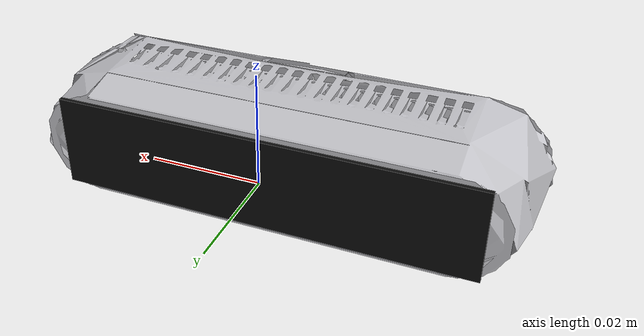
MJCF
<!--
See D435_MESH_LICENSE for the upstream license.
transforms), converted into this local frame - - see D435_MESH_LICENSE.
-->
<mujoco model="d435">
  <compiler angle="radian" meshdir="meshes" autolimits="true"/>

  <asset>
    <mesh name="d435_mesh" file="d435.obj"/>
    <material name="d435_body" rgba="0.75 0.75 0.77 1" specular="0.4" shininess="0.3"/>
    <material name="d435_glass" rgba="0.05 0.05 0.05 1" specular="0.6" shininess="0.6"/>
  </asset>

  <worldbody>
    <!-- quat reorients the mount so the lens looks along +y at rpy [0,0,0] (see header). -->
    <body name="mount" quat="0 0 0.70710678 0.70710678">
      <geom name="d435_visual" type="mesh" mesh="d435_mesh" material="d435_body"
            contype="0" conaffinity="0"/>
      <geom name="d435_front" type="box" pos="0 0 0.0004" size="0.038 0.0085 0.0004"
            material="d435_glass" contype="0" conaffinity="0"/>
      <geom name="d435_collision" type="box" pos="0 0 -0.01285" size="0.04536 0.01314 0.01286"
            group="3"/>
      <camera name="d435_color" pos="0.0325 0 -0.0043" xyaxes="-1 0 0 0 1 0"
              fovy="42.5" resolution="640 480"/>
    </body>
  </worldbody>
</mujoco>
